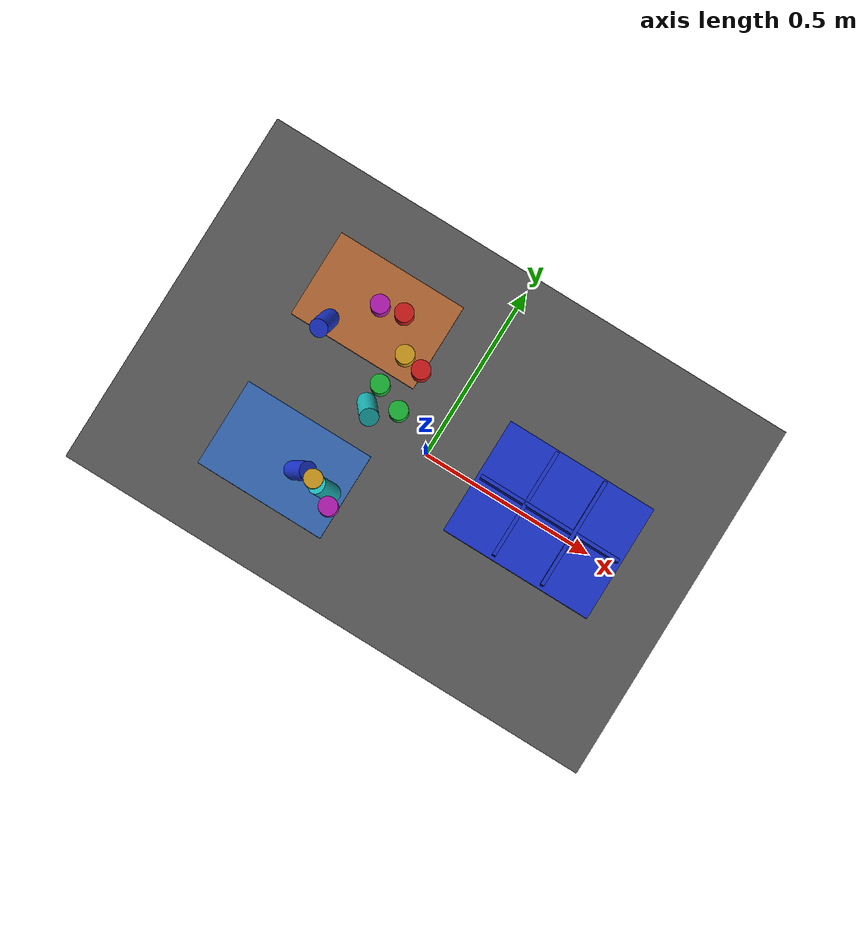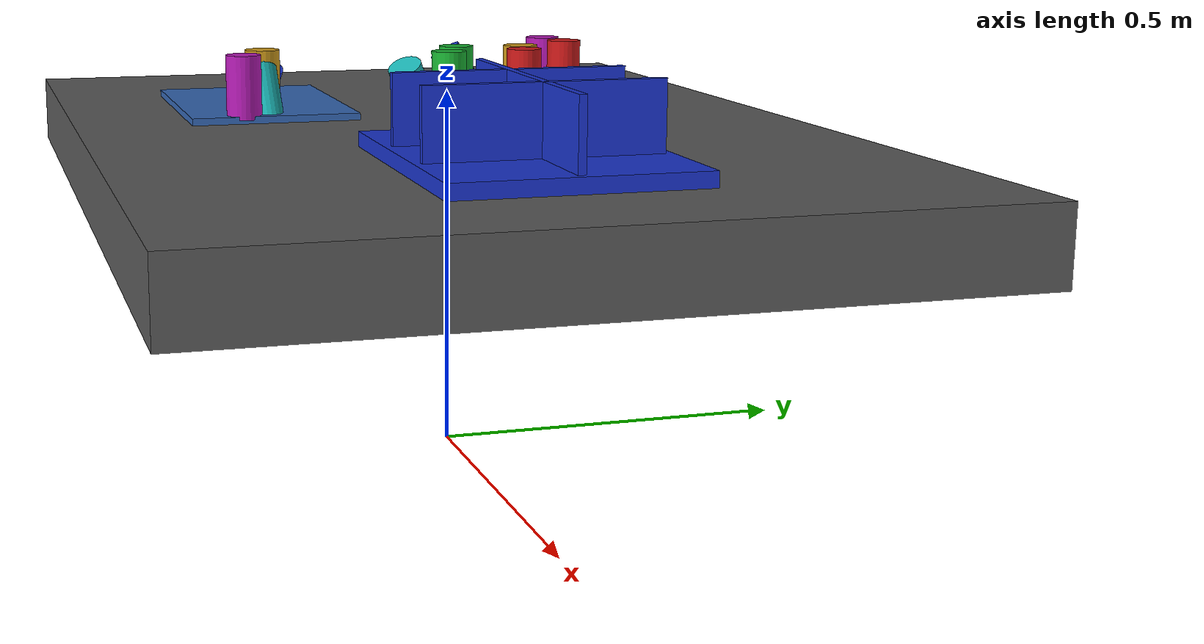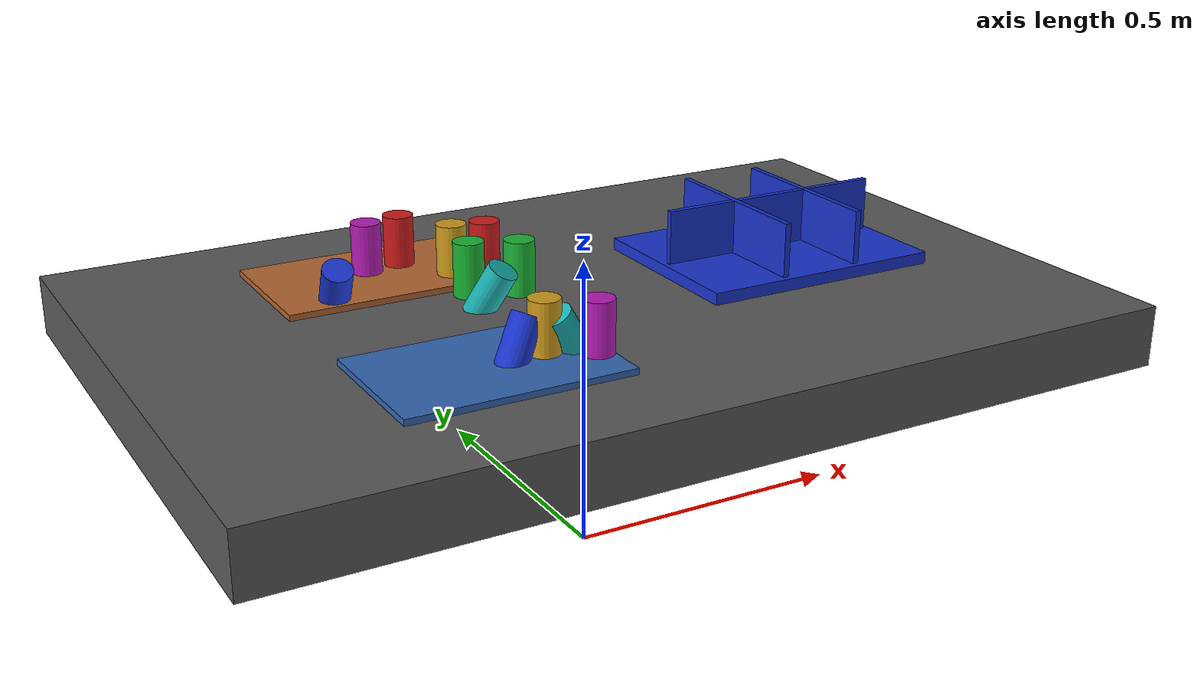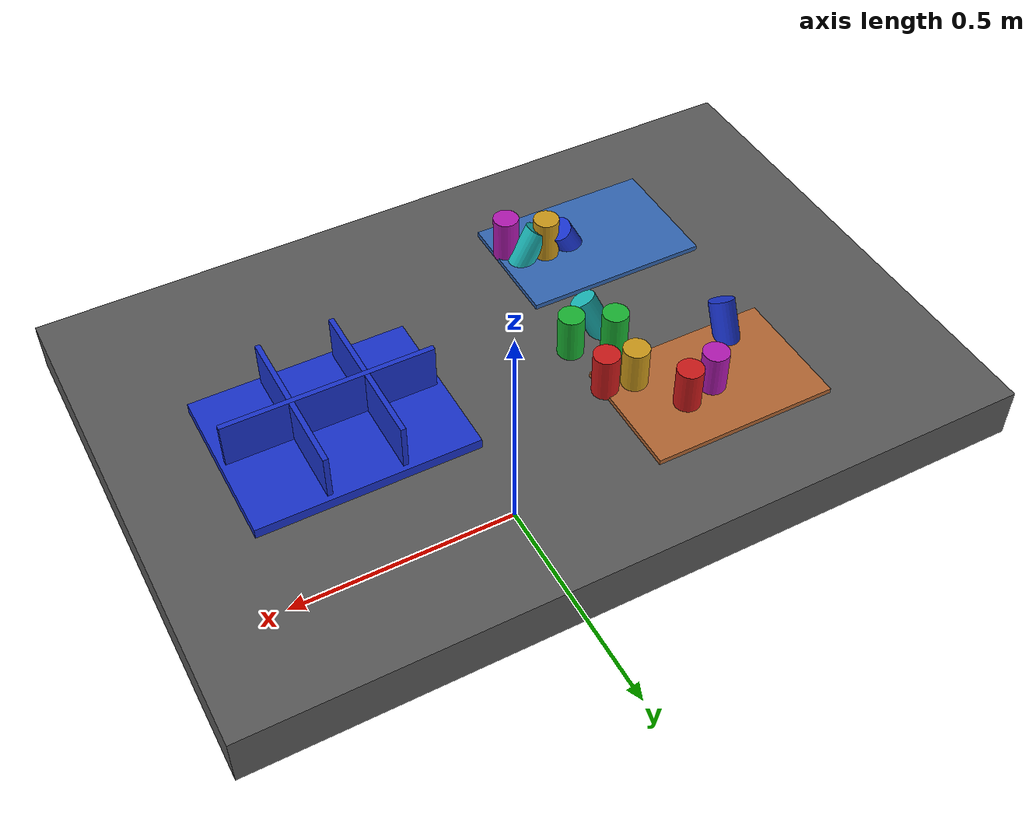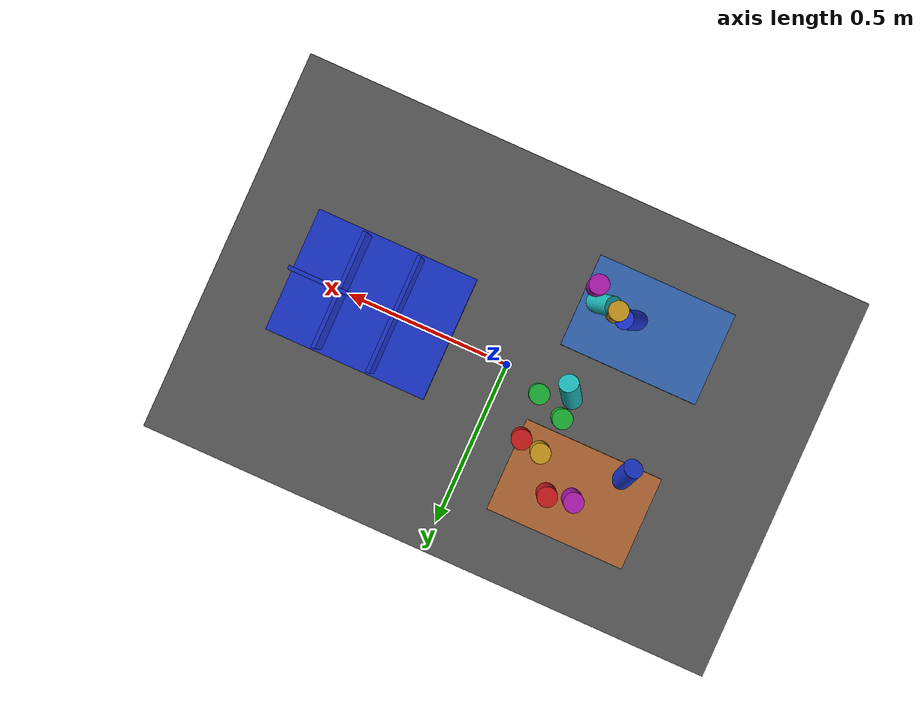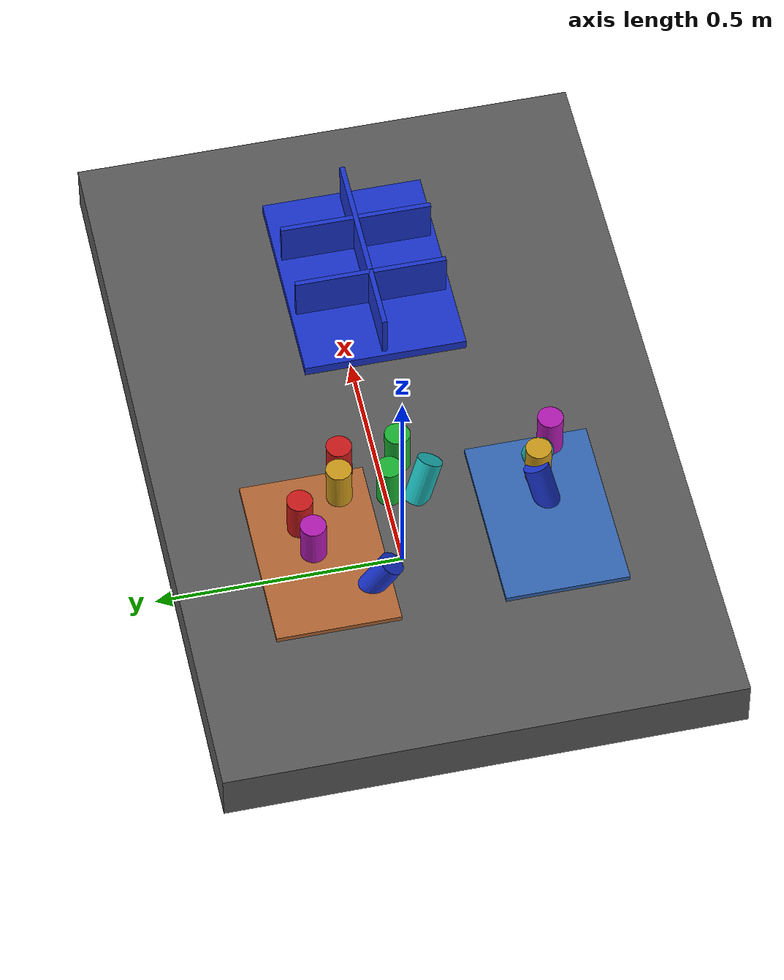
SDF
<?xml version="1.0" ?>
<sdf version="1.9">
  <!-- Standalone M1B scene.  The controller-backed Panda is spawned by the
       existing launch path; this file never alters the frozen M1A cube world. -->
  <world name="industrial_cylinder_v1">
    <physics name="bullet" type="bullet"><max_step_size>0.001</max_step_size><real_time_factor>1.0</real_time_factor></physics>
    <plugin name="gz::sim::systems::Physics" filename="gz-sim-physics-system"><engine><filename>gz-physics-bullet-featherstone-plugin</filename></engine></plugin>
    <plugin name="gz::sim::systems::UserCommands" filename="gz-sim-user-commands-system"/>
    <plugin name="gz::sim::systems::SceneBroadcaster" filename="gz-sim-scene-broadcaster-system"/>
    <plugin name="gz::sim::systems::Sensors" filename="gz-sim-sensors-system"><render_engine>ogre2</render_engine></plugin>
    <gravity>0 0 -9.81</gravity>
    <light type="directional" name="industrial_light"><pose>0 0 5 0 0 0</pose><direction>-0.3 0.2 -0.9</direction><diffuse>0.9 0.9 0.9 1</diffuse></light>
    <model name="industrial_work_table"><static>true</static><link name="link"><pose>0 0 0.4 0 0 0</pose><collision name="collision"><geometry><box><size>1.5 1.0 0.1</size></box></geometry></collision><visual name="visual"><geometry><box><size>1.5 1.0 0.1</size></box></geometry><material><diffuse>0.35 0.35 0.35 1</diffuse></material></visual></link></model>
    <model name="camera_fixture"><static>true</static><link name="camera_rgbd"><pose>-0.80 -0.80 1.40 0 0.77 0.93</pose><sensor name="front_rgbd" type="rgbd_camera"><always_on>1</always_on><update_rate>15</update_rate><topic>/xh/camera/rgbd</topic><camera><horizontal_fov>1.047</horizontal_fov><image><width>640</width><height>480</height><format>R8G8B8</format></image><clip><near>0.1</near><far>4.0</far></clip></camera></sensor></link></model>
    <model name="incoming_zone_a"><static>true</static><link name="link"><pose>-0.28 -0.22 0.455 0 0 0</pose><visual name="visual"><geometry><box><size>0.36 0.24 0.01</size></box></geometry><material><diffuse>0.2 0.4 0.7 1</diffuse></material></visual></link></model>
    <model name="incoming_zone_b"><static>true</static><link name="link"><pose>-0.28 0.22 0.455 0 0 0</pose><visual name="visual"><geometry><box><size>0.36 0.24 0.01</size></box></geometry><material><diffuse>0.7 0.4 0.2 1</diffuse></material></visual></link></model>
    <!-- M1B_RANDOM_PARTS_BEGIN -->
    <model name="cylinder_01"><pose>-0.1050 0.1460 0.5000 0.0000 0.0000 -1.8973</pose><link name="link"><inertial><mass>0.06</mass></inertial><collision name="collision"><geometry><cylinder><radius>0.025</radius><length>0.09</length></cylinder></geometry></collision><visual name="visual"><geometry><cylinder><radius>0.025</radius><length>0.09</length></cylinder></geometry><material><diffuse>0.800 0.100 0.100 1</diffuse><specular>0.15 0.15 0.15 1</specular></material></visual></link></model>
    <model name="cylinder_02"><pose>-0.0994 0.0311 0.5000 3.1416 0.0000 -0.7709</pose><link name="link"><inertial><mass>0.06</mass></inertial><collision name="collision"><geometry><cylinder><radius>0.025</radius><length>0.09</length></cylinder></geometry></collision><visual name="visual"><geometry><cylinder><radius>0.025</radius><length>0.09</length></cylinder></geometry><material><diffuse>0.100 0.700 0.200 1</diffuse><specular>0.15 0.15 0.15 1</specular></material></visual></link></model>
    <model name="cylinder_03"><pose>-0.3739 0.1243 0.4800 0.4500 -0.3000 0.4035</pose><link name="link"><inertial><mass>0.06</mass></inertial><collision name="collision"><geometry><cylinder><radius>0.025</radius><length>0.09</length></cylinder></geometry></collision><visual name="visual"><geometry><cylinder><radius>0.025</radius><length>0.09</length></cylinder></geometry><material><diffuse>0.100 0.200 0.800 1</diffuse><specular>0.15 0.15 0.15 1</specular></material></visual></link></model>
    <model name="cylinder_04"><pose>-0.1592 0.1575 0.5000 0.0000 0.0000 -1.8907</pose><link name="link"><inertial><mass>0.06</mass></inertial><collision name="collision"><geometry><cylinder><radius>0.025</radius><length>0.09</length></cylinder></geometry></collision><visual name="visual"><geometry><cylinder><radius>0.025</radius><length>0.09</length></cylinder></geometry><material><diffuse>0.800 0.600 0.100 1</diffuse><specular>0.15 0.15 0.15 1</specular></material></visual></link></model>
    <model name="cylinder_05"><pose>-0.1223 -0.2628 0.5000 3.1416 0.0000 2.8232</pose><link name="link"><inertial><mass>0.06</mass></inertial><collision name="collision"><geometry><cylinder><radius>0.025</radius><length>0.09</length></cylinder></geometry></collision><visual name="visual"><geometry><cylinder><radius>0.025</radius><length>0.09</length></cylinder></geometry><material><diffuse>0.700 0.100 0.700 1</diffuse><specular>0.15 0.15 0.15 1</specular></material></visual></link></model>
    <model name="cylinder_06"><pose>-0.1686 -0.0039 0.4800 0.4500 -0.3000 1.2725</pose><link name="link"><inertial><mass>0.06</mass></inertial><collision name="collision"><geometry><cylinder><radius>0.025</radius><length>0.09</length></cylinder></geometry></collision><visual name="visual"><geometry><cylinder><radius>0.025</radius><length>0.09</length></cylinder></geometry><material><diffuse>0.100 0.700 0.700 1</diffuse><specular>0.15 0.15 0.15 1</specular></material></visual></link></model>
    <model name="cylinder_07"><pose>-0.2155 0.2448 0.5000 0.0000 0.0000 2.5706</pose><link name="link"><inertial><mass>0.06</mass></inertial><collision name="collision"><geometry><cylinder><radius>0.025</radius><length>0.09</length></cylinder></geometry></collision><visual name="visual"><geometry><cylinder><radius>0.025</radius><length>0.09</length></cylinder></geometry><material><diffuse>0.800 0.100 0.100 1</diffuse><specular>0.15 0.15 0.15 1</specular></material></visual></link></model>
    <model name="cylinder_08"><pose>-0.1732 0.0625 0.5000 3.1416 0.0000 -2.2076</pose><link name="link"><inertial><mass>0.06</mass></inertial><collision name="collision"><geometry><cylinder><radius>0.025</radius><length>0.09</length></cylinder></geometry></collision><visual name="visual"><geometry><cylinder><radius>0.025</radius><length>0.09</length></cylinder></geometry><material><diffuse>0.100 0.700 0.200 1</diffuse><specular>0.15 0.15 0.15 1</specular></material></visual></link></model>
    <model name="cylinder_09"><pose>-0.2326 -0.2234 0.4800 0.4500 -0.3000 2.5317</pose><link name="link"><inertial><mass>0.06</mass></inertial><collision name="collision"><geometry><cylinder><radius>0.025</radius><length>0.09</length></cylinder></geometry></collision><visual name="visual"><geometry><cylinder><radius>0.025</radius><length>0.09</length></cylinder></geometry><material><diffuse>0.100 0.200 0.800 1</diffuse><specular>0.15 0.15 0.15 1</specular></material></visual></link></model>
    <model name="cylinder_10"><pose>-0.1896 -0.2242 0.5000 0.0000 0.0000 2.3994</pose><link name="link"><inertial><mass>0.06</mass></inertial><collision name="collision"><geometry><cylinder><radius>0.025</radius><length>0.09</length></cylinder></geometry></collision><visual name="visual"><geometry><cylinder><radius>0.025</radius><length>0.09</length></cylinder></geometry><material><diffuse>0.800 0.600 0.100 1</diffuse><specular>0.15 0.15 0.15 1</specular></material></visual></link></model>
    <model name="cylinder_11"><pose>-0.2779 0.2314 0.5000 3.1416 0.0000 0.2704</pose><link name="link"><inertial><mass>0.06</mass></inertial><collision name="collision"><geometry><cylinder><radius>0.025</radius><length>0.09</length></cylinder></geometry></collision><visual name="visual"><geometry><cylinder><radius>0.025</radius><length>0.09</length></cylinder></geometry><material><diffuse>0.700 0.100 0.700 1</diffuse><specular>0.15 0.15 0.15 1</specular></material></visual></link></model>
    <model name="cylinder_12"><pose>-0.1528 -0.2300 0.4800 0.4500 -0.3000 -0.9514</pose><link name="link"><inertial><mass>0.06</mass></inertial><collision name="collision"><geometry><cylinder><radius>0.025</radius><length>0.09</length></cylinder></geometry></collision><visual name="visual"><geometry><cylinder><radius>0.025</radius><length>0.09</length></cylinder></geometry><material><diffuse>0.100 0.700 0.700 1</diffuse><specular>0.15 0.15 0.15 1</specular></material></visual></link></model>
    <!-- M1B_RANDOM_PARTS_END -->
    <model name="blue_partition_bin"><static>true</static><pose>0.36 0 0.45 0 0 0</pose><link name="link"><collision name="floor"><pose>0 0 0.01 0 0 0</pose><geometry><box><size>0.42 0.32 0.02</size></box></geometry></collision><visual name="floor_visual"><pose>0 0 0.01 0 0 0</pose><geometry><box><size>0.42 0.32 0.02</size></box></geometry><material><diffuse>0.1 0.2 0.8 1</diffuse></material></visual><visual name="row_divider"><pose>0 0 0.06 0 0 0</pose><geometry><box><size>0.40 0.01 0.10</size></box></geometry><material><diffuse>0.1 0.2 0.8 1</diffuse></material></visual><visual name="col_divider_a"><pose>-0.07 0 0.06 0 0 0</pose><geometry><box><size>0.01 0.30 0.10</size></box></geometry><material><diffuse>0.1 0.2 0.8 1</diffuse></material></visual><visual name="col_divider_b"><pose>0.07 0 0.06 0 0 0</pose><geometry><box><size>0.01 0.30 0.10</size></box></geometry><material><diffuse>0.1 0.2 0.8 1</diffuse></material></visual></link></model>
    <!-- Reserved only: second table, bin transport corridor, stackable-bin
         collision volume, and second arm mounting namespace. -->
  </world>
</sdf>
